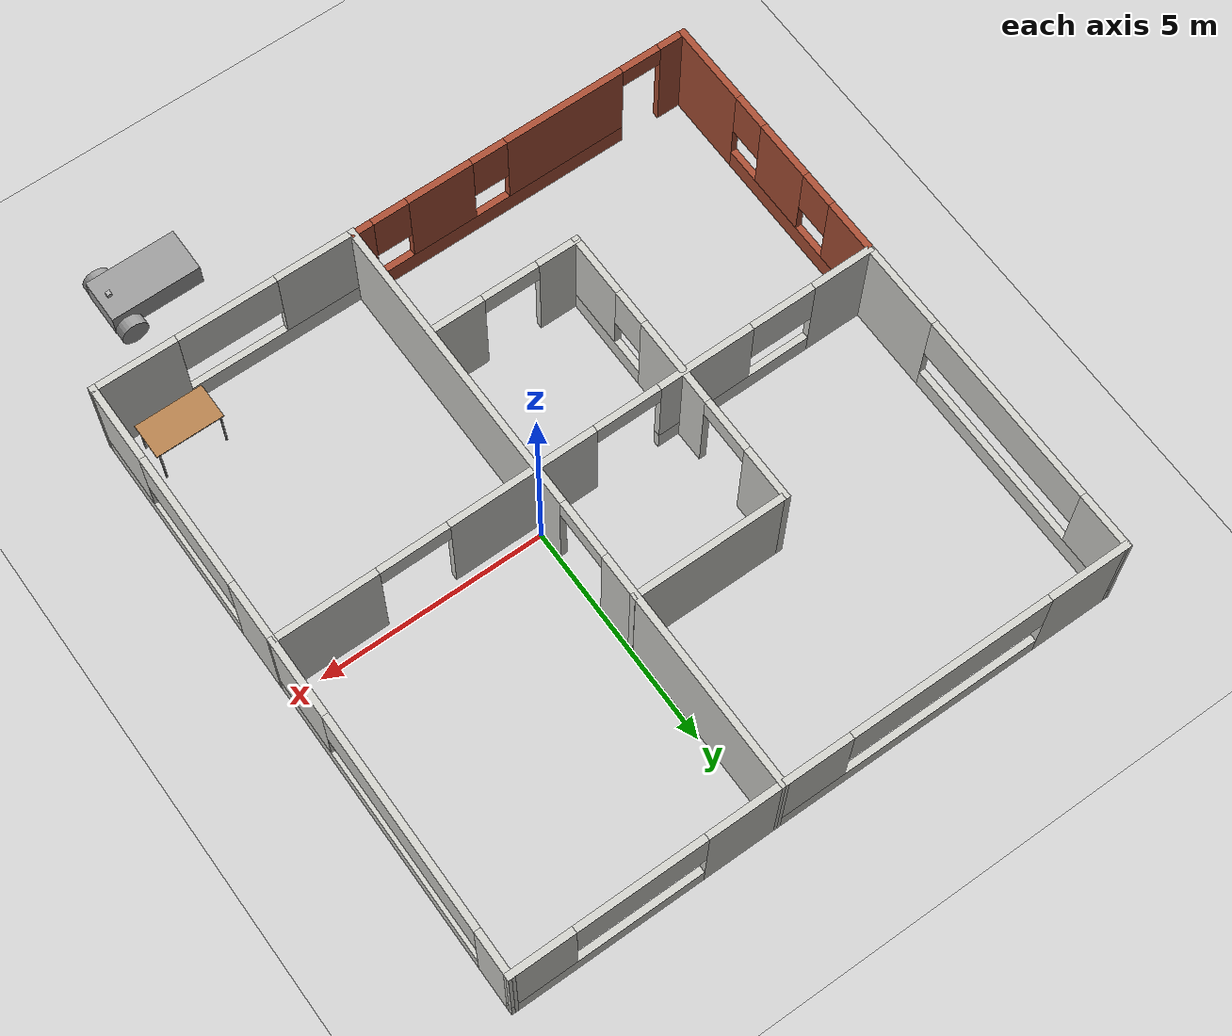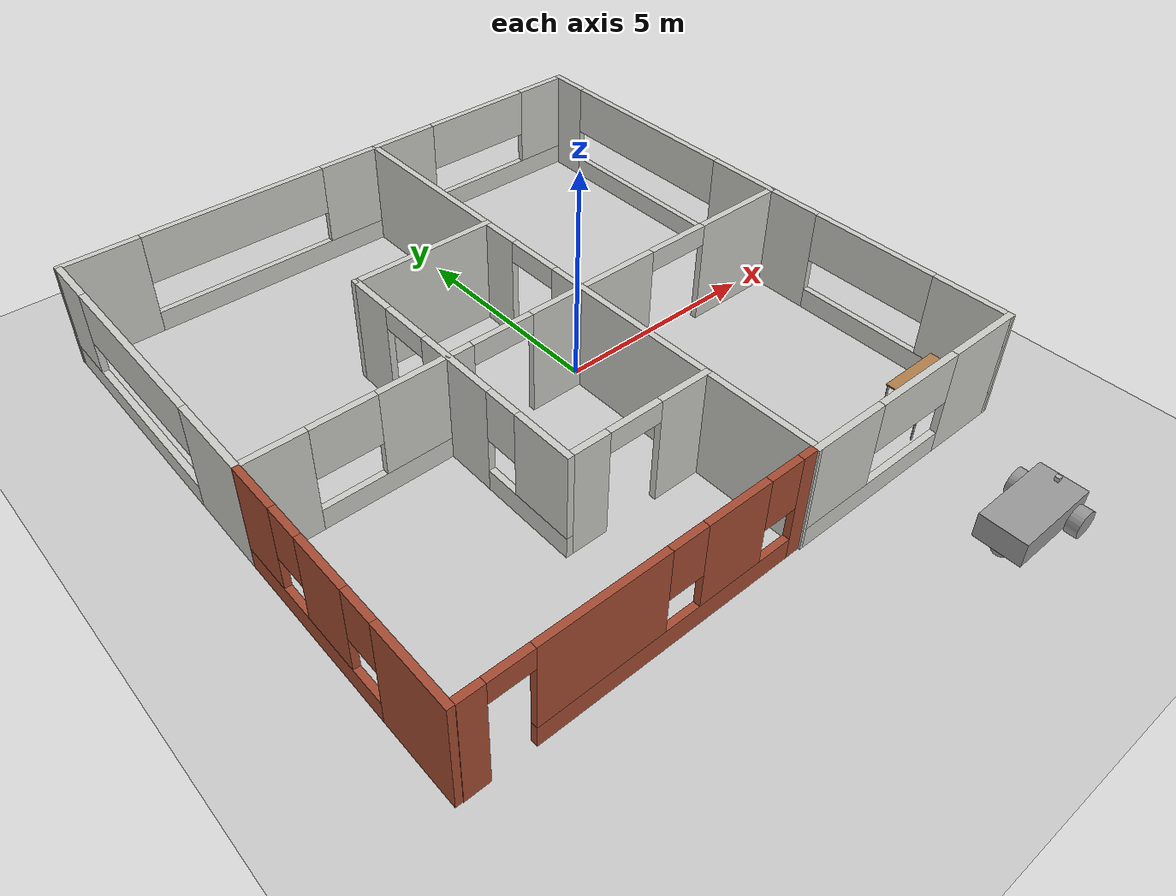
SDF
<sdf version="1.7">
 <world name="default">
  <model name="ground_plane">
   <static>1</static>
   <link name="link">
    <collision name="collision">
     <geometry><plane><normal>0 0 1</normal><size>100 100</size></plane></geometry>
     <surface>
      <contact><collide_bitmask>65535</collide_bitmask></contact>
      <friction><ode><mu>100</mu><mu2>50</mu2></ode></friction>
     </surface>
    </collision>
    <visual name="visual">
     <cast_shadows>0</cast_shadows>
     <geometry><plane><normal>0 0 1</normal><size>100 100</size></plane></geometry>
     <material>
      <script><uri>file://media/materials/scripts/gazebo.material</uri><name>Gazebo/Grey</name></script>
     </material>
    </visual>
   </link>
  </model>
  <model name="floor">
   <pose>-1.1194 0.40926 0 0 -0 0</pose>
   <link name="Wall_0">
    <collision name="Wall_0_Collision">
     <geometry><box><size>3.5 0.15 2.5</size></box></geometry>
     <pose>0 0 1.25 0 -0 0</pose>
    </collision>
    <visual name="Wall_0_Visual">
     <pose>0 0 1.25 0 -0 0</pose>
     <geometry><box><size>3.5 0.15 2.5</size></box></geometry>
     <material>
      <script><uri>file://media/materials/scripts/gazebo.material</uri><name>Gazebo/CeilingTiled</name></script>
      <ambient>0.921569 0.807843 0.615686 1</ambient>
     </material>
     <meta><layer>0</layer></meta>
    </visual>
    <pose>-0.680453 2.40138 0 0 -0 0</pose>
   </link>
   <link name="Wall_10">
    <pose>3.86966 6.71461 0 0 -0 0</pose>
    <visual name="Wall_10_Visual_0">
     <pose>-2.10615 0 1.25 0 -0 0</pose>
     <geometry><box><size>1.71925 0.15 2.5</size></box></geometry>
     <material>
      <script><uri>file://media/materials/scripts/gazebo.material</uri><name>Gazebo/CeilingTiled</name></script>
      <ambient>0.996078 0.47451 0.0196078 1</ambient>
     </material>
     <meta><layer>0</layer></meta>
    </visual>
    <collision name="Wall_10_Collision_0">
     <geometry><box><size>1.71925 0.15 2.5</size></box></geometry>
     <pose>-2.10615 0 1.25 0 -0 0</pose>
    </collision>
    <visual name="Wall_10_Visual_1">
     <pose>0.859627 0 0.25 0 -0 0</pose>
     <geometry><box><size>4.2123 0.15 0.5</size></box></geometry>
     <material>
      <script><uri>file://media/materials/scripts/gazebo.material</uri><name>Gazebo/CeilingTiled</name></script>
      <ambient>0.996078 0.47451 0.0196078 1</ambient>
     </material>
     <meta><layer>0</layer></meta>
    </visual>
    <collision name="Wall_10_Collision_1">
     <geometry><box><size>4.2123 0.15 0.5</size></box></geometry>
     <pose>0.859627 0 0.25 0 -0 0</pose>
    </collision>
    <visual name="Wall_10_Visual_2">
     <pose>2.25525 0 1.5 0 -0 0</pose>
     <geometry><box><size>1.42105 0.15 2</size></box></geometry>
     <material>
      <script><uri>file://media/materials/scripts/gazebo.material</uri><name>Gazebo/CeilingTiled</name></script>
      <ambient>0.996078 0.47451 0.0196078 1</ambient>
     </material>
     <meta><layer>0</layer></meta>
    </visual>
    <collision name="Wall_10_Collision_2">
     <geometry><box><size>1.42105 0.15 2</size></box></geometry>
     <pose>2.25525 0 1.5 0 -0 0</pose>
    </collision>
    <visual name="Wall_10_Visual_3">
     <pose>0.1491 0 1.9 0 -0 0</pose>
     <geometry><box><size>2.79124 0.15 1.2</size></box></geometry>
     <material>
      <script><uri>file://media/materials/scripts/gazebo.material</uri><name>Gazebo/CeilingTiled</name></script>
      <ambient>0.996078 0.47451 0.0196078 1</ambient>
     </material>
     <meta><layer>0</layer></meta>
    </visual>
    <collision name="Wall_10_Collision_3">
     <geometry><box><size>2.79124 0.15 1.2</size></box></geometry>
     <pose>0.1491 0 1.9 0 -0 0</pose>
    </collision>
   </link>
   <link name="Wall_11">
    <pose>6.74514 3.02848 0 0 0 -1.57495</pose>
    <visual name="Wall_11_Visual_0">
     <pose>-3.24419 0 1.25 0 -0 0</pose>
     <geometry><box><size>1.03393 0.15 2.5</size></box></geometry>
     <material>
      <script><uri>file://media/materials/scripts/gazebo.material</uri><name>Gazebo/CeilingTiled</name></script>
      <ambient>0.996078 0.47451 0.0196078 1</ambient>
     </material>
     <meta><layer>0</layer></meta>
    </visual>
    <collision name="Wall_11_Collision_0">
     <geometry><box><size>1.03393 0.15 2.5</size></box></geometry>
     <pose>-3.24419 0 1.25 0 -0 0</pose>
    </collision>
    <visual name="Wall_11_Visual_1">
     <pose>0.516965 0 0.25 0 -0 0</pose>
     <geometry><box><size>6.48838 0.15 0.5</size></box></geometry>
     <material>
      <script><uri>file://media/materials/scripts/gazebo.material</uri><name>Gazebo/CeilingTiled</name></script>
      <ambient>0.996078 0.47451 0.0196078 1</ambient>
     </material>
     <meta><layer>0</layer></meta>
    </visual>
    <collision name="Wall_11_Collision_1">
     <geometry><box><size>6.48838 0.15 0.5</size></box></geometry>
     <pose>0.516965 0 0.25 0 -0 0</pose>
    </collision>
    <visual name="Wall_11_Visual_2">
     <pose>2.86792 0 1.5 0 -0 0</pose>
     <geometry><box><size>1.78646 0.15 2</size></box></geometry>
     <material>
      <script><uri>file://media/materials/scripts/gazebo.material</uri><name>Gazebo/CeilingTiled</name></script>
      <ambient>0.996078 0.47451 0.0196078 1</ambient>
     </material>
     <meta><layer>0</layer></meta>
    </visual>
    <collision name="Wall_11_Collision_2">
     <geometry><box><size>1.78646 0.15 2</size></box></geometry>
     <pose>2.86792 0 1.5 0 -0 0</pose>
    </collision>
    <visual name="Wall_11_Visual_3">
     <pose>-0.376266 0 1.9 0 -0 0</pose>
     <geometry><box><size>4.70192 0.15 1.2</size></box></geometry>
     <material>
      <script><uri>file://media/materials/scripts/gazebo.material</uri><name>Gazebo/CeilingTiled</name></script>
      <ambient>0.996078 0.47451 0.0196078 1</ambient>
     </material>
     <meta><layer>0</layer></meta>
    </visual>
    <collision name="Wall_11_Collision_3">
     <geometry><box><size>4.70192 0.15 1.2</size></box></geometry>
     <pose>-0.376266 0 1.9 0 -0 0</pose>
    </collision>
   </link>
   <link name="Wall_13">
    <pose>-6.76045 3.04378 0 0 -0 1.5708</pose>
    <visual name="Wall_13_Visual_0">
     <pose>-2.80286 0 1.25 0 -0 0</pose>
     <geometry><box><size>1.94712 0.15 2.5</size></box></geometry>
     <material>
      <script><uri>file://media/materials/scripts/gazebo.material</uri><name>Gazebo/CeilingTiled</name></script>
      <ambient>0.996078 0.47451 0.0196078 1</ambient>
     </material>
     <meta><layer>0</layer></meta>
    </visual>
    <collision name="Wall_13_Collision_0">
     <geometry><box><size>1.94712 0.15 2.5</size></box></geometry>
     <pose>-2.80286 0 1.25 0 -0 0</pose>
    </collision>
    <visual name="Wall_13_Visual_1">
     <pose>0.97356 0 0.25 0 -0 0</pose>
     <geometry><box><size>5.60571 0.15 0.5</size></box></geometry>
     <material>
      <script><uri>file://media/materials/scripts/gazebo.material</uri><name>Gazebo/CeilingTiled</name></script>
      <ambient>0.996078 0.47451 0.0196078 1</ambient>
     </material>
     <meta><layer>0</layer></meta>
    </visual>
    <collision name="Wall_13_Collision_1">
     <geometry><box><size>5.60571 0.15 0.5</size></box></geometry>
     <pose>0.97356 0 0.25 0 -0 0</pose>
    </collision>
    <visual name="Wall_13_Visual_2">
     <pose>3.1335 0 1.5 0 -0 0</pose>
     <geometry><box><size>1.28584 0.15 2</size></box></geometry>
     <material>
      <script><uri>file://media/materials/scripts/gazebo.material</uri><name>Gazebo/CeilingTiled</name></script>
      <ambient>0.996078 0.47451 0.0196078 1</ambient>
     </material>
     <meta><layer>0</layer></meta>
    </visual>
    <collision name="Wall_13_Collision_2">
     <geometry><box><size>1.28584 0.15 2</size></box></geometry>
     <pose>3.1335 0 1.5 0 -0 0</pose>
    </collision>
    <visual name="Wall_13_Visual_3">
     <pose>0.330641 0 1.9 0 -0 0</pose>
     <geometry><box><size>4.31987 0.15 1.2</size></box></geometry>
     <material>
      <script><uri>file://media/materials/scripts/gazebo.material</uri><name>Gazebo/CeilingTiled</name></script>
      <ambient>0.996078 0.47451 0.0196078 1</ambient>
     </material>
     <meta><layer>0</layer></meta>
    </visual>
    <collision name="Wall_13_Collision_3">
     <geometry><box><size>4.31987 0.15 1.2</size></box></geometry>
     <pose>0.330641 0 1.9 0 -0 0</pose>
    </collision>
   </link>
   <link name="Wall_14">
    <pose>-2.93667 6.7299 0 0 0 -0.004</pose>
    <visual name="Wall_14_Visual_0">
     <pose>-2.97598 0 1.25 0 -0 0</pose>
     <geometry><box><size>1.84566 0.15 2.5</size></box></geometry>
     <material>
      <script><uri>file://media/materials/scripts/gazebo.material</uri><name>Gazebo/CeilingTiled</name></script>
      <ambient>0.996078 0.47451 0.0196078 1</ambient>
     </material>
     <meta><layer>0</layer></meta>
    </visual>
    <collision name="Wall_14_Collision_0">
     <geometry><box><size>1.84566 0.15 2.5</size></box></geometry>
     <pose>-2.97598 0 1.25 0 -0 0</pose>
    </collision>
    <visual name="Wall_14_Visual_1">
     <pose>0.922833 0 0.25 0 -0 0</pose>
     <geometry><box><size>5.95195 0.15 0.5</size></box></geometry>
     <material>
      <script><uri>file://media/materials/scripts/gazebo.material</uri><name>Gazebo/CeilingTiled</name></script>
      <ambient>0.996078 0.47451 0.0196078 1</ambient>
     </material>
     <meta><layer>0</layer></meta>
    </visual>
    <collision name="Wall_14_Collision_1">
     <geometry><box><size>5.95195 0.15 0.5</size></box></geometry>
     <pose>0.922833 0 0.25 0 -0 0</pose>
    </collision>
    <visual name="Wall_14_Visual_2">
     <pose>3.15291 0 1.5 0 -0 0</pose>
     <geometry><box><size>1.49179 0.15 2</size></box></geometry>
     <material>
      <script><uri>file://media/materials/scripts/gazebo.material</uri><name>Gazebo/CeilingTiled</name></script>
      <ambient>0.996078 0.47451 0.0196078 1</ambient>
     </material>
     <meta><layer>0</layer></meta>
    </visual>
    <collision name="Wall_14_Collision_2">
     <geometry><box><size>1.49179 0.15 2</size></box></geometry>
     <pose>3.15291 0 1.5 0 -0 0</pose>
    </collision>
    <visual name="Wall_14_Visual_3">
     <pose>0.176935 0 1.9 0 -0 0</pose>
     <geometry><box><size>4.46016 0.15 1.2</size></box></geometry>
     <material>
      <script><uri>file://media/materials/scripts/gazebo.material</uri><name>Gazebo/CeilingTiled</name></script>
      <ambient>0.996078 0.47451 0.0196078 1</ambient>
     </material>
     <meta><layer>0</layer></meta>
    </visual>
    <collision name="Wall_14_Collision_3">
     <geometry><box><size>4.46016 0.15 1.2</size></box></geometry>
     <pose>0.176935 0 1.9 0 -0 0</pose>
    </collision>
   </link>
   <link name="Wall_16">
    <pose>-2.35545 -0.856476 0 0 0 -1.5708</pose>
    <visual name="Wall_16_Visual_0">
     <pose>-2.72153 0 1.25 0 -0 0</pose>
     <geometry><box><size>1.22295 0.15 2.5</size></box></geometry>
     <material>
      <script><uri>file://media/materials/scripts/gazebo.material</uri><name>Gazebo/CeilingTiled</name></script>
      <ambient>0.996078 0.47451 0.0196078 1</ambient>
     </material>
     <meta><layer>0</layer></meta>
    </visual>
    <collision name="Wall_16_Collision_0">
     <geometry><box><size>1.22295 0.15 2.5</size></box></geometry>
     <pose>-2.72153 0 1.25 0 -0 0</pose>
    </collision>
    <visual name="Wall_16_Visual_1">
     <pose>0.091031 0 1.25 0 -0 0</pose>
     <geometry><box><size>2.00077 0.15 2.5</size></box></geometry>
     <material>
      <script><uri>file://media/materials/scripts/gazebo.material</uri><name>Gazebo/CeilingTiled</name></script>
      <ambient>0.996078 0.47451 0.0196078 1</ambient>
     </material>
     <meta><layer>0</layer></meta>
    </visual>
    <collision name="Wall_16_Collision_1">
     <geometry><box><size>2.00077 0.15 2.5</size></box></geometry>
     <pose>0.091031 0 1.25 0 -0 0</pose>
    </collision>
    <visual name="Wall_16_Visual_2">
     <pose>2.21221 0 0.25 0 -0 0</pose>
     <geometry><box><size>2.24159 0.15 0.5</size></box></geometry>
     <material>
      <script><uri>file://media/materials/scripts/gazebo.material</uri><name>Gazebo/CeilingTiled</name></script>
      <ambient>0.996078 0.47451 0.0196078 1</ambient>
     </material>
     <meta><layer>0</layer></meta>
    </visual>
    <collision name="Wall_16_Collision_2">
     <geometry><box><size>2.24159 0.15 0.5</size></box></geometry>
     <pose>2.21221 0 0.25 0 -0 0</pose>
    </collision>
    <visual name="Wall_16_Visual_3">
     <pose>2.61221 0 1.5 0 -0 0</pose>
     <geometry><box><size>1.44159 0.15 2</size></box></geometry>
     <material>
      <script><uri>file://media/materials/scripts/gazebo.material</uri><name>Gazebo/CeilingTiled</name></script>
      <ambient>0.996078 0.47451 0.0196078 1</ambient>
     </material>
     <meta><layer>0</layer></meta>
    </visual>
    <collision name="Wall_16_Collision_3">
     <geometry><box><size>1.44159 0.15 2</size></box></geometry>
     <pose>2.61221 0 1.5 0 -0 0</pose>
    </collision>
    <visual name="Wall_16_Visual_4">
     <pose>1.49142 0 1.9 0 -0 0</pose>
     <geometry><box><size>0.8 0.15 1.2</size></box></geometry>
     <material>
      <script><uri>file://media/materials/scripts/gazebo.material</uri><name>Gazebo/CeilingTiled</name></script>
      <ambient>0.996078 0.47451 0.0196078 1</ambient>
     </material>
     <meta><layer>0</layer></meta>
    </visual>
    <collision name="Wall_16_Collision_4">
     <geometry><box><size>0.8 0.15 1.2</size></box></geometry>
     <pose>1.49142 0 1.9 0 -0 0</pose>
    </collision>
    <visual name="Wall_16_Visual_5">
     <pose>-1.5097 0 2.25 0 -0 0</pose>
     <geometry><box><size>1.2007 0.15 0.5</size></box></geometry>
     <material>
      <script><uri>file://media/materials/scripts/gazebo.material</uri><name>Gazebo/CeilingTiled</name></script>
      <ambient>0.996078 0.47451 0.0196078 1</ambient>
     </material>
     <meta><layer>0</layer></meta>
    </visual>
    <collision name="Wall_16_Collision_5">
     <geometry><box><size>1.2007 0.15 0.5</size></box></geometry>
     <pose>-1.5097 0 2.25 0 -0 0</pose>
    </collision>
   </link>
   <link name="Wall_19">
    <pose>-0.680453 -4.11433 0 0 -0 0</pose>
    <visual name="Wall_19_Visual_0">
     <pose>-1.25768 0 1.25 0 -0 0</pose>
     <geometry><box><size>0.984642 0.15 2.5</size></box></geometry>
     <material>
      <script><uri>file://media/materials/scripts/gazebo.material</uri><name>Gazebo/CeilingTiled</name></script>
      <ambient>0.921569 0.807843 0.615686 1</ambient>
     </material>
     <meta><layer>0</layer></meta>
    </visual>
    <collision name="Wall_19_Collision_0">
     <geometry><box><size>0.984642 0.15 2.5</size></box></geometry>
     <pose>-1.25768 0 1.25 0 -0 0</pose>
    </collision>
    <visual name="Wall_19_Visual_1">
     <pose>1.1158 0 1.25 0 -0 0</pose>
     <geometry><box><size>1.2684 0.15 2.5</size></box></geometry>
     <material>
      <script><uri>file://media/materials/scripts/gazebo.material</uri><name>Gazebo/CeilingTiled</name></script>
      <ambient>0.921569 0.807843 0.615686 1</ambient>
     </material>
     <meta><layer>0</layer></meta>
    </visual>
    <collision name="Wall_19_Collision_1">
     <geometry><box><size>1.2684 0.15 2.5</size></box></geometry>
     <pose>1.1158 0 1.25 0 -0 0</pose>
    </collision>
    <visual name="Wall_19_Visual_2">
     <pose>-0.141879 0 2.25 0 -0 0</pose>
     <geometry><box><size>1.24696 0.15 0.5</size></box></geometry>
     <material>
      <script><uri>file://media/materials/scripts/gazebo.material</uri><name>Gazebo/CeilingTiled</name></script>
      <ambient>0.921569 0.807843 0.615686 1</ambient>
     </material>
     <meta><layer>0</layer></meta>
    </visual>
    <collision name="Wall_19_Collision_2">
     <geometry><box><size>1.24696 0.15 0.5</size></box></geometry>
     <pose>-0.141879 0 2.25 0 -0 0</pose>
    </collision>
   </link>
   <link name="Wall_6">
    <pose>-5e-06 -0.68823 0 0 -0 0.004545</pose>
    <visual name="Wall_6_Visual_0">
     <pose>-6.09809 0 1.25 0 -0 0</pose>
     <geometry><box><size>1.41365 0.15 2.5</size></box></geometry>
     <material>
      <script><uri>file://media/materials/scripts/gazebo.material</uri><name>Gazebo/CeilingTiled</name></script>
      <ambient>0.921569 0.807843 0.615686 1</ambient>
     </material>
     <meta><layer>0</layer></meta>
    </visual>
    <collision name="Wall_6_Collision_0">
     <geometry><box><size>1.41365 0.15 2.5</size></box></geometry>
     <pose>-6.09809 0 1.25 0 -0 0</pose>
    </collision>
    <visual name="Wall_6_Visual_1">
     <pose>1.30078 0 1.25 0 -0 0</pose>
     <geometry><box><size>3.27649 0.15 2.5</size></box></geometry>
     <material>
      <script><uri>file://media/materials/scripts/gazebo.material</uri><name>Gazebo/CeilingTiled</name></script>
      <ambient>0.921569 0.807843 0.615686 1</ambient>
     </material>
     <meta><layer>0</layer></meta>
    </visual>
    <collision name="Wall_6_Collision_1">
     <geometry><box><size>3.27649 0.15 2.5</size></box></geometry>
     <pose>1.30078 0 1.25 0 -0 0</pose>
    </collision>
    <visual name="Wall_6_Visual_2">
     <pose>5.64099 0 1.25 0 -0 0</pose>
     <geometry><box><size>2.32786 0.15 2.5</size></box></geometry>
     <material>
      <script><uri>file://media/materials/scripts/gazebo.material</uri><name>Gazebo/CeilingTiled</name></script>
      <ambient>0.921569 0.807843 0.615686 1</ambient>
     </material>
     <meta><layer>0</layer></meta>
    </visual>
    <collision name="Wall_6_Collision_2">
     <geometry><box><size>2.32786 0.15 2.5</size></box></geometry>
     <pose>5.64099 0 1.25 0 -0 0</pose>
    </collision>
    <visual name="Wall_6_Visual_3">
     <pose>-3.59193 0 0.25 0 -0 0</pose>
     <geometry><box><size>3.59867 0.15 0.5</size></box></geometry>
     <material>
      <script><uri>file://media/materials/scripts/gazebo.material</uri><name>Gazebo/CeilingTiled</name></script>
      <ambient>0.921569 0.807843 0.615686 1</ambient>
     </material>
     <meta><layer>0</layer></meta>
    </visual>
    <collision name="Wall_6_Collision_3">
     <geometry><box><size>3.59867 0.15 0.5</size></box></geometry>
     <pose>-3.59193 0 0.25 0 -0 0</pose>
    </collision>
    <visual name="Wall_6_Visual_4">
     <pose>-2.86816 0 1.5 0 -0 0</pose>
     <geometry><box><size>2.15113 0.15 2</size></box></geometry>
     <material>
      <script><uri>file://media/materials/scripts/gazebo.material</uri><name>Gazebo/CeilingTiled</name></script>
      <ambient>0.921569 0.807843 0.615686 1</ambient>
     </material>
     <meta><layer>0</layer></meta>
    </visual>
    <collision name="Wall_6_Collision_4">
     <geometry><box><size>2.15113 0.15 2</size></box></geometry>
     <pose>-2.86816 0 1.5 0 -0 0</pose>
    </collision>
    <visual name="Wall_6_Visual_5">
     <pose>-4.6675 0 1.9 0 -0 0</pose>
     <geometry><box><size>1.44755 0.15 1.2</size></box></geometry>
     <material>
      <script><uri>file://media/materials/scripts/gazebo.material</uri><name>Gazebo/CeilingTiled</name></script>
      <ambient>0.921569 0.807843 0.615686 1</ambient>
     </material>
     <meta><layer>0</layer></meta>
    </visual>
    <collision name="Wall_6_Collision_5">
     <geometry><box><size>1.44755 0.15 1.2</size></box></geometry>
     <pose>-4.6675 0 1.9 0 -0 0</pose>
    </collision>
    <visual name="Wall_6_Visual_6">
     <pose>3.70804 0 2.25 0 -0 0</pose>
     <geometry><box><size>1.53804 0.15 0.5</size></box></geometry>
     <material>
      <script><uri>file://media/materials/scripts/gazebo.material</uri><name>Gazebo/CeilingTiled</name></script>
      <ambient>0.921569 0.807843 0.615686 1</ambient>
     </material>
     <meta><layer>0</layer></meta>
    </visual>
    <collision name="Wall_6_Collision_6">
     <geometry><box><size>1.53804 0.15 0.5</size></box></geometry>
     <pose>3.70804 0 2.25 0 -0 0</pose>
    </collision>
    <visual name="Wall_6_Visual_7">
     <pose>-1.06503 0 2.25 0 -0 0</pose>
     <geometry><box><size>1.45513 0.15 0.5</size></box></geometry>
     <material>
      <script><uri>file://media/materials/scripts/gazebo.material</uri><name>Gazebo/CeilingTiled</name></script>
      <ambient>0.921569 0.807843 0.615686 1</ambient>
     </material>
     <meta><layer>0</layer></meta>
    </visual>
    <collision name="Wall_6_Collision_7">
     <geometry><box><size>1.45513 0.15 0.5</size></box></geometry>
     <pose>-1.06503 0 2.25 0 -0 0</pose>
    </collision>
   </link>
   <link name="Wall_7">
    <pose>6.72985 -3.70137 0 0 0 -1.5708</pose>
    <visual name="Wall_7_Visual_0">
     <pose>-2.40595 0 1.25 0 -0 0</pose>
     <geometry><box><size>1.42563 0.15 2.5</size></box></geometry>
     <material>
      <script><uri>file://media/materials/scripts/gazebo.material</uri><name>Gazebo/CeilingTiled</name></script>
      <ambient>0.996078 0.47451 0.0196078 1</ambient>
     </material>
     <meta><layer>0</layer></meta>
    </visual>
    <collision name="Wall_7_Collision_0">
     <geometry><box><size>1.42563 0.15 2.5</size></box></geometry>
     <pose>-2.40595 0 1.25 0 -0 0</pose>
    </collision>
    <visual name="Wall_7_Visual_1">
     <pose>0.712816 0 0.25 0 -0 0</pose>
     <geometry><box><size>4.8119 0.15 0.5</size></box></geometry>
     <material>
      <script><uri>file://media/materials/scripts/gazebo.material</uri><name>Gazebo/CeilingTiled</name></script>
      <ambient>0.996078 0.47451 0.0196078 1</ambient>
     </material>
     <meta><layer>0</layer></meta>
    </visual>
    <collision name="Wall_7_Collision_1">
     <geometry><box><size>4.8119 0.15 0.5</size></box></geometry>
     <pose>0.712816 0 0.25 0 -0 0</pose>
    </collision>
    <visual name="Wall_7_Visual_2">
     <pose>2.21906 0 1.5 0 -0 0</pose>
     <geometry><box><size>1.79941 0.15 2</size></box></geometry>
     <material>
      <script><uri>file://media/materials/scripts/gazebo.material</uri><name>Gazebo/CeilingTiled</name></script>
      <ambient>0.996078 0.47451 0.0196078 1</ambient>
     </material>
     <meta><layer>0</layer></meta>
    </visual>
    <collision name="Wall_7_Collision_2">
     <geometry><box><size>1.79941 0.15 2</size></box></geometry>
     <pose>2.21906 0 1.5 0 -0 0</pose>
    </collision>
    <visual name="Wall_7_Visual_3">
     <pose>-0.186888 0 1.9 0 -0 0</pose>
     <geometry><box><size>3.01249 0.15 1.2</size></box></geometry>
     <material>
      <script><uri>file://media/materials/scripts/gazebo.material</uri><name>Gazebo/CeilingTiled</name></script>
      <ambient>0.996078 0.47451 0.0196078 1</ambient>
     </material>
     <meta><layer>0</layer></meta>
    </visual>
    <collision name="Wall_7_Collision_3">
     <geometry><box><size>3.01249 0.15 1.2</size></box></geometry>
     <pose>-0.186888 0 1.9 0 -0 0</pose>
    </collision>
   </link>
   <link name="Wall_8">
    <pose>3.86966 -6.7298 0 0 -0 3.13625</pose>
    <visual name="Wall_8_Visual_0">
     <pose>-1.99488 0 1.25 0 -0 0</pose>
     <geometry><box><size>1.8807 0.15 2.5</size></box></geometry>
     <material>
      <script><uri>file://media/materials/scripts/gazebo.material</uri><name>Gazebo/CeilingTiled</name></script>
      <ambient>0.996078 0.47451 0.0196078 1</ambient>
     </material>
     <meta><layer>0</layer></meta>
    </visual>
    <collision name="Wall_8_Collision_0">
     <geometry><box><size>1.8807 0.15 2.5</size></box></geometry>
     <pose>-1.99488 0 1.25 0 -0 0</pose>
    </collision>
    <visual name="Wall_8_Visual_1">
     <pose>0.940351 0 0.25 0 -0 0</pose>
     <geometry><box><size>3.98975 0.15 0.5</size></box></geometry>
     <material>
      <script><uri>file://media/materials/scripts/gazebo.material</uri><name>Gazebo/CeilingTiled</name></script>
      <ambient>0.996078 0.47451 0.0196078 1</ambient>
     </material>
     <meta><layer>0</layer></meta>
    </visual>
    <collision name="Wall_8_Collision_1">
     <geometry><box><size>3.98975 0.15 0.5</size></box></geometry>
     <pose>0.940351 0 0.25 0 -0 0</pose>
    </collision>
    <visual name="Wall_8_Visual_2">
     <pose>2.03431 0 1.5 0 -0 0</pose>
     <geometry><box><size>1.80183 0.15 2</size></box></geometry>
     <material>
      <script><uri>file://media/materials/scripts/gazebo.material</uri><name>Gazebo/CeilingTiled</name></script>
      <ambient>0.996078 0.47451 0.0196078 1</ambient>
     </material>
     <meta><layer>0</layer></meta>
    </visual>
    <collision name="Wall_8_Collision_2">
     <geometry><box><size>1.80183 0.15 2</size></box></geometry>
     <pose>2.03431 0 1.5 0 -0 0</pose>
    </collision>
    <visual name="Wall_8_Visual_3">
     <pose>0.039436 0 1.9 0 -0 0</pose>
     <geometry><box><size>2.18792 0.15 1.2</size></box></geometry>
     <material>
      <script><uri>file://media/materials/scripts/gazebo.material</uri><name>Gazebo/CeilingTiled</name></script>
      <ambient>0.996078 0.47451 0.0196078 1</ambient>
     </material>
     <meta><layer>0</layer></meta>
    </visual>
    <collision name="Wall_8_Collision_3">
     <geometry><box><size>2.18792 0.15 1.2</size></box></geometry>
     <pose>0.039436 0 1.9 0 -0 0</pose>
    </collision>
   </link>
   <link name="Wall_9">
    <pose>0.994177 5e-05 0 0 -0 1.57307</pose>
    <visual name="Wall_9_Visual_0">
     <pose>-3.31645 0 1.25 0 -0 0</pose>
     <geometry><box><size>6.94625 0.15 2.5</size></box></geometry>
     <material>
      <script><uri>file://media/materials/scripts/gazebo.material</uri><name>Gazebo/CeilingTiled</name></script>
      <ambient>0.921569 0.807843 0.615686 1</ambient>
     </material>
     <meta><layer>0</layer></meta>
    </visual>
    <collision name="Wall_9_Collision_0">
     <geometry><box><size>6.94625 0.15 2.5</size></box></geometry>
     <pose>-3.31645 0 1.25 0 -0 0</pose>
    </collision>
    <visual name="Wall_9_Visual_1">
     <pose>4.11974 0 1.25 0 -0 0</pose>
     <geometry><box><size>5.33967 0.15 2.5</size></box></geometry>
     <material>
      <script><uri>file://media/materials/scripts/gazebo.material</uri><name>Gazebo/CeilingTiled</name></script>
      <ambient>0.921569 0.807843 0.615686 1</ambient>
     </material>
     <meta><layer>0</layer></meta>
    </visual>
    <collision name="Wall_9_Collision_1">
     <geometry><box><size>5.33967 0.15 2.5</size></box></geometry>
     <pose>4.11974 0 1.25 0 -0 0</pose>
    </collision>
    <visual name="Wall_9_Visual_2">
     <pose>0.803289 0 2.25 0 -0 0</pose>
     <geometry><box><size>1.29322 0.15 0.5</size></box></geometry>
     <material>
      <script><uri>file://media/materials/scripts/gazebo.material</uri><name>Gazebo/CeilingTiled</name></script>
      <ambient>0.921569 0.807843 0.615686 1</ambient>
     </material>
     <meta><layer>0</layer></meta>
    </visual>
    <collision name="Wall_9_Collision_2">
     <geometry><box><size>1.29322 0.15 0.5</size></box></geometry>
     <pose>0.803289 0 2.25 0 -0 0</pose>
    </collision>
   </link>
   <static>1</static>
  </model>
  <model name="table_clone_0">
   <static>1</static>
   <link name="link">
    <collision name="surface">
     <pose>0 0 1 0 -0 0</pose>
     <geometry><box><size>1.5 0.8 0.03</size></box></geometry>
     <surface><friction><ode><mu>0.6</mu><mu2>0.6</mu2></ode></friction></surface>
    </collision>
    <visual name="visual1">
     <pose>0 0 1 0 -0 0</pose>
     <geometry><box><size>1.5 0.8 0.03</size></box></geometry>
     <material>
      <script><uri>file://media/materials/scripts/gazebo.material</uri><name>Gazebo/Wood</name></script>
     </material>
    </visual>
    <collision name="front_left_leg">
     <pose>0.68 0.38 0.5 0 -0 0</pose>
     <geometry><cylinder><radius>0.02</radius><length>1</length></cylinder></geometry>
    </collision>
    <visual name="front_left_leg">
     <pose>0.68 0.38 0.5 0 -0 0</pose>
     <geometry><cylinder><radius>0.02</radius><length>1</length></cylinder></geometry>
     <material>
      <script><uri>file://media/materials/scripts/gazebo.material</uri><name>Gazebo/Grey</name></script>
     </material>
    </visual>
    <collision name="front_right_leg">
     <pose>0.68 -0.38 0.5 0 -0 0</pose>
     <geometry><cylinder><radius>0.02</radius><length>1</length></cylinder></geometry>
    </collision>
    <visual name="front_right_leg">
     <pose>0.68 -0.38 0.5 0 -0 0</pose>
     <geometry><cylinder><radius>0.02</radius><length>1</length></cylinder></geometry>
     <material>
      <script><uri>file://media/materials/scripts/gazebo.material</uri><name>Gazebo/Grey</name></script>
     </material>
    </visual>
    <collision name="back_right_leg">
     <pose>-0.68 -0.38 0.5 0 -0 0</pose>
     <geometry><cylinder><radius>0.02</radius><length>1</length></cylinder></geometry>
    </collision>
    <visual name="back_right_leg">
     <pose>-0.68 -0.38 0.5 0 -0 0</pose>
     <geometry><cylinder><radius>0.02</radius><length>1</length></cylinder></geometry>
     <material>
      <script><uri>file://media/materials/scripts/gazebo.material</uri><name>Gazebo/Grey</name></script>
     </material>
    </visual>
    <collision name="back_left_leg">
     <pose>-0.68 0.38 0.5 0 -0 0</pose>
     <geometry><cylinder><radius>0.02</radius><length>1</length></cylinder></geometry>
    </collision>
    <visual name="back_left_leg">
     <pose>-0.68 0.38 0.5 0 -0 0</pose>
     <geometry><cylinder><radius>0.02</radius><length>1</length></cylinder></geometry>
     <material>
      <script><uri>file://media/materials/scripts/gazebo.material</uri><name>Gazebo/Grey</name></script>
     </material>
    </visual>
   </link>
   <pose>4.45347 -5.56698 0 0 -0 0</pose>
  </model>
  <model name="follower_vehicle">
   <pose>3.47693 -8.76936 0.325 0 -0 0</pose>
   <link name="chassis">
    <pose>-0.151427 -0 0.175 0 -0 0</pose>
    <inertial>
     <mass>1.14395</mass>
     <inertia>
      <ixx>0.126164</ixx>
      <ixy>0</ixy>
      <ixz>0</ixz>
      <iyy>0.416519</iyy>
      <iyz>0</iyz>
      <izz>0.481014</izz>
     </inertia>
    </inertial>
    <visual name="visual">
     <geometry><box><size>2.01142 1 0.568726</size></box></geometry>
     <material>
      <script><uri>file://media/materials/scripts/gazebo.material</uri><name>Gazebo/Grey</name></script>
     </material>
    </visual>
    <collision name="collision">
     <geometry><box><size>2.01142 1 0.568726</size></box></geometry>
     <surface>
      <friction><ode><mu>1</mu><mu2>1</mu2><fdir1>0 0 0</fdir1><slip1>0</slip1><slip2>0</slip2></ode></friction>
      <bounce><restitution_coefficient>0</restitution_coefficient><threshold>1e+06</threshold></bounce>
      <contact>
       <collide_without_contact>0</collide_without_contact>
       <collide_without_contact_bitmask>1</collide_without_contact_bitmask>
       <collide_bitmask>1</collide_bitmask>
       <ode>
        <soft_cfm>0</soft_cfm>
        <soft_erp>0.2</soft_erp>
        <kp>1e+13</kp>
        <kd>1</kd>
        <max_vel>0.01</max_vel>
        <min_depth>0</min_depth>
       </ode>
      </contact>
     </surface>
    </collision>
   </link>
   <link name="wheel_1">
    <pose>0.554283 0.625029 -0.025 1.5707 -0 0</pose>
    <inertial>
     <mass>2</mass>
     <inertia><ixx>0.145833</ixx><ixy>0</ixy><ixz>0</ixz><iyy>0.145833</iyy><iyz>0</iyz><izz>0.125</izz></inertia>
    </inertial>
    <visual name="visual">
     <geometry><cylinder><radius>0.3</radius><length>0.25</length></cylinder></geometry>
     <material>
      <script><uri>file://media/materials/scripts/gazebo.material</uri><name>Gazebo/Grey</name></script>
     </material>
    </visual>
    <collision name="collision">
     <geometry><cylinder><radius>0.3</radius><length>0.25</length></cylinder></geometry>
     <surface>
      <friction><ode><mu>1</mu><mu2>1</mu2><fdir1>0 0 0</fdir1><slip1>0</slip1><slip2>0</slip2></ode></friction>
      <bounce><restitution_coefficient>0</restitution_coefficient><threshold>1e+06</threshold></bounce>
      <contact>
       <collide_without_contact>0</collide_without_contact>
       <collide_without_contact_bitmask>1</collide_without_contact_bitmask>
       <collide_bitmask>1</collide_bitmask>
       <ode>
        <soft_cfm>0</soft_cfm>
        <soft_erp>0.2</soft_erp>
        <kp>1e+13</kp>
        <kd>1</kd>
        <max_vel>0.01</max_vel>
        <min_depth>0</min_depth>
       </ode>
      </contact>
     </surface>
    </collision>
   </link>
   <link name="wheel_2">
    <pose>0.554282 -0.625029 -0.025 1.5707 -0 0</pose>
    <inertial>
     <mass>2</mass>
     <inertia><ixx>0.145833</ixx><ixy>0</ixy><ixz>0</ixz><iyy>0.145833</iyy><iyz>0</iyz><izz>0.125</izz></inertia>
    </inertial>
    <visual name="visual">
     <geometry><cylinder><radius>0.3</radius><length>0.25</length></cylinder></geometry>
     <material>
      <script><uri>file://media/materials/scripts/gazebo.material</uri><name>Gazebo/Grey</name></script>
     </material>
    </visual>
    <collision name="collision">
     <geometry><cylinder><radius>0.3</radius><length>0.25</length></cylinder></geometry>
     <surface>
      <friction><ode><mu>1</mu><mu2>1</mu2><fdir1>0 0 0</fdir1><slip1>0</slip1><slip2>0</slip2></ode></friction>
      <bounce><restitution_coefficient>0</restitution_coefficient><threshold>1e+06</threshold></bounce>
      <contact>
       <collide_without_contact>0</collide_without_contact>
       <collide_without_contact_bitmask>1</collide_without_contact_bitmask>
       <collide_bitmask>1</collide_bitmask>
       <ode>
        <soft_cfm>0</soft_cfm>
        <soft_erp>0.2</soft_erp>
        <kp>1e+13</kp>
        <kd>1</kd>
        <max_vel>0.01</max_vel>
        <min_depth>0</min_depth>
       </ode>
      </contact>
     </surface>
    </collision>
   </link>
   <link name="caster">
    <pose>-0.957138 -0 -0.125 0 -0 0</pose>
    <inertial>
     <mass>1</mass>
     <inertia><ixx>0.1</ixx><ixy>0</ixy><ixz>0</ixz><iyy>0.1</iyy><iyz>0</iyz><izz>0.1</izz></inertia>
    </inertial>
    <visual name="visual">
     <geometry><sphere><radius>0.2</radius></sphere></geometry>
     <material>
      <script><uri>file://media/materials/scripts/gazebo.material</uri><name>Gazebo/Grey</name></script>
     </material>
    </visual>
    <collision name="collision">
     <geometry><sphere><radius>0.2</radius></sphere></geometry>
     <surface>
      <friction><ode><mu>1</mu><mu2>1</mu2><fdir1>0 0 0</fdir1><slip1>0</slip1><slip2>0</slip2></ode></friction>
      <bounce><restitution_coefficient>0</restitution_coefficient><threshold>1e+06</threshold></bounce>
      <contact>
       <collide_without_contact>0</collide_without_contact>
       <collide_without_contact_bitmask>1</collide_without_contact_bitmask>
       <collide_bitmask>1</collide_bitmask>
       <ode>
        <soft_cfm>0</soft_cfm>
        <soft_erp>0.2</soft_erp>
        <kp>1e+13</kp>
        <kd>1</kd>
        <max_vel>0.01</max_vel>
        <min_depth>0</min_depth>
       </ode>
      </contact>
     </surface>
    </collision>
   </link>
   <model name="depth_camera">
    <link name="link">
     <pose>0.05 0.05 0.05 0 -0 0</pose>
     <inertial>
      <mass>0.1</mass>
      <inertia>
       <ixx>0.000166667</ixx>
       <iyy>0.000166667</iyy>
       <izz>0.000166667</izz>
       <ixy>0</ixy>
       <ixz>0</ixz>
       <iyz>0</iyz>
      </inertia>
     </inertial>
     <collision name="collision"><geometry><box><size>0.1 0.1 0.1</size></box></geometry></collision>
     <visual name="visual"><geometry><box><size>0.1 0.1 0.1</size></box></geometry></visual>
     <sensor name="camera" type="depth">
      <camera name="depth">
       <horizontal_fov>1.047</horizontal_fov>
       <image><width>320</width><height>240</height></image>
       <clip><near>0.1</near><far>100</far></clip>
      </camera>
      <always_on>1</always_on>
      <update_rate>30</update_rate>
      <visualize>1</visualize>
     </sensor>
    </link>
    <pose>0.569632 -0.03223 0.502056 0 -0 0</pose>
   </model>
   <joint name="chassis_wheel_1_revolute" type="revolute">
    <parent>chassis</parent>
    <child>wheel_1</child>
    <axis>
     <xyz>0 0 1</xyz>
     <limit>
      <lower>-1.79769e+308</lower>
      <upper>1.79769e+308</upper>
      <effort>-1</effort>
      <velocity>-1</velocity>
     </limit>
     <dynamics>
      <spring_reference>0</spring_reference>
      <spring_stiffness>0</spring_stiffness>
      <damping>0</damping>
      <friction>0</friction>
     </dynamics>
    </axis>
    <physics>
     <ode><limit><cfm>0</cfm><erp>0.2</erp></limit><suspension><cfm>0</cfm><erp>0.2</erp></suspension></ode>
    </physics>
   </joint>
   <joint name="chassis_wheel_2_revolute" type="revolute">
    <parent>chassis</parent>
    <child>wheel_2</child>
    <axis>
     <xyz>0 0 1</xyz>
     <limit>
      <lower>-1.79769e+308</lower>
      <upper>1.79769e+308</upper>
      <effort>-1</effort>
      <velocity>-1</velocity>
     </limit>
     <dynamics>
      <spring_reference>0</spring_reference>
      <spring_stiffness>0</spring_stiffness>
      <damping>0</damping>
      <friction>0</friction>
     </dynamics>
    </axis>
    <physics>
     <ode><limit><cfm>0</cfm><erp>0.2</erp></limit><suspension><cfm>0</cfm><erp>0.2</erp></suspension></ode>
    </physics>
   </joint>
   <joint name="chassis_caster_ball" type="ball">
    <parent>chassis</parent>
    <child>caster</child>
    <physics>
     <ode><limit><cfm>0</cfm><erp>0.2</erp></limit><suspension><cfm>0</cfm><erp>0.2</erp></suspension></ode>
    </physics>
   </joint>
   <joint name="chassis_depth_camera_link_fixed" type="fixed">
    <parent>chassis</parent>
    <child>depth_camera::link</child>
    <physics>
     <ode><limit><cfm>0</cfm><erp>0.2</erp></limit><suspension><cfm>0</cfm><erp>0.2</erp></suspension></ode>
    </physics>
   </joint>
   <static>0</static>
   <plugin name="follower" filename="libFollowerPlugin.so"/>
  </model>
  <model name="extentionfloor">
   <pose>-3.97784 -3.17124 0 0 -0 0</pose>
   <link name="Wall_2">
    <pose>-3.90284 -0.159732 0 0 -0 1.5708</pose>
    <visual name="Wall_2_Visual_0">
     <pose>-2.05658 0 1.25 0 -0 0</pose>
     <geometry><box><size>1.88685 0.15 2.5</size></box></geometry>
     <material>
      <script><uri>file://media/materials/scripts/gazebo.material</uri><name>Gazebo/Bricks</name></script>
      <ambient>1 1 1 1</ambient>
     </material>
     <meta><layer>0</layer></meta>
    </visual>
    <collision name="Wall_2_Collision_0">
     <geometry><box><size>1.88685 0.15 2.5</size></box></geometry>
     <pose>-2.05658 0 1.25 0 -0 0</pose>
    </collision>
    <visual name="Wall_2_Visual_1">
     <pose>0.943425 0 0.25 0 -0 0</pose>
     <geometry><box><size>4.11315 0.15 0.5</size></box></geometry>
     <material>
      <script><uri>file://media/materials/scripts/gazebo.material</uri><name>Gazebo/Bricks</name></script>
      <ambient>1 1 1 1</ambient>
     </material>
     <meta><layer>0</layer></meta>
    </visual>
    <collision name="Wall_2_Collision_1">
     <geometry><box><size>4.11315 0.15 0.5</size></box></geometry>
     <pose>0.943425 0 0.25 0 -0 0</pose>
    </collision>
    <visual name="Wall_2_Visual_2">
     <pose>0.355581 0 1.5 0 -0 0</pose>
     <geometry><box><size>1.33746 0.15 2</size></box></geometry>
     <material>
      <script><uri>file://media/materials/scripts/gazebo.material</uri><name>Gazebo/Bricks</name></script>
      <ambient>1 1 1 1</ambient>
     </material>
     <meta><layer>0</layer></meta>
    </visual>
    <collision name="Wall_2_Collision_2">
     <geometry><box><size>1.33746 0.15 2</size></box></geometry>
     <pose>0.355581 0 1.5 0 -0 0</pose>
    </collision>
    <visual name="Wall_2_Visual_3">
     <pose>2.41216 0 1.5 0 -0 0</pose>
     <geometry><box><size>1.17569 0.15 2</size></box></geometry>
     <material>
      <script><uri>file://media/materials/scripts/gazebo.material</uri><name>Gazebo/Bricks</name></script>
      <ambient>1 1 1 1</ambient>
     </material>
     <meta><layer>0</layer></meta>
    </visual>
    <collision name="Wall_2_Collision_3">
     <geometry><box><size>1.17569 0.15 2</size></box></geometry>
     <pose>2.41216 0 1.5 0 -0 0</pose>
    </collision>
    <visual name="Wall_2_Visual_4">
     <pose>-0.71315 0 1.9 0 -0 0</pose>
     <geometry><box><size>0.8 0.15 1.2</size></box></geometry>
     <material>
      <script><uri>file://media/materials/scripts/gazebo.material</uri><name>Gazebo/Bricks</name></script>
      <ambient>1 1 1 1</ambient>
     </material>
     <meta><layer>0</layer></meta>
    </visual>
    <collision name="Wall_2_Collision_4">
     <geometry><box><size>0.8 0.15 1.2</size></box></geometry>
     <pose>-0.71315 0 1.9 0 -0 0</pose>
    </collision>
    <visual name="Wall_2_Visual_5">
     <pose>1.42431 0 1.9 0 -0 0</pose>
     <geometry><box><size>0.8 0.15 1.2</size></box></geometry>
     <material>
      <script><uri>file://media/materials/scripts/gazebo.material</uri><name>Gazebo/Bricks</name></script>
      <ambient>1 1 1 1</ambient>
     </material>
     <meta><layer>0</layer></meta>
    </visual>
    <collision name="Wall_2_Collision_5">
     <geometry><box><size>0.8 0.15 1.2</size></box></geometry>
     <pose>1.42431 0 1.9 0 -0 0</pose>
    </collision>
   </link>
   <link name="Wall_4">
    <pose>0.045679 -3.09624 0 0 -0 3.14159</pose>
    <visual name="Wall_4_Visual_0">
     <pose>-3.63975 0 1.25 0 -0 0</pose>
     <geometry><box><size>0.470501 0.15 2.5</size></box></geometry>
     <material>
      <script><uri>file://media/materials/scripts/gazebo.material</uri><name>Gazebo/Bricks</name></script>
      <ambient>1 1 1 1</ambient>
     </material>
     <meta><layer>0</layer></meta>
    </visual>
    <collision name="Wall_4_Collision_0">
     <geometry><box><size>0.470501 0.15 2.5</size></box></geometry>
     <pose>-3.63975 0 1.25 0 -0 0</pose>
    </collision>
    <visual name="Wall_4_Visual_1">
     <pose>3.61 0 1.25 0 -0 0</pose>
     <geometry><box><size>0.529999 0.15 2.5</size></box></geometry>
     <material>
      <script><uri>file://media/materials/scripts/gazebo.material</uri><name>Gazebo/Bricks</name></script>
      <ambient>1 1 1 1</ambient>
     </material>
     <meta><layer>0</layer></meta>
    </visual>
    <collision name="Wall_4_Collision_1">
     <geometry><box><size>0.529999 0.15 2.5</size></box></geometry>
     <pose>3.61 0 1.25 0 -0 0</pose>
    </collision>
    <visual name="Wall_4_Visual_2">
     <pose>-0.479749 0 0.25 0 -0 0</pose>
     <geometry><box><size>5.8495 0.15 0.5</size></box></geometry>
     <material>
      <script><uri>file://media/materials/scripts/gazebo.material</uri><name>Gazebo/Bricks</name></script>
      <ambient>1 1 1 1</ambient>
     </material>
     <meta><layer>0</layer></meta>
    </visual>
    <collision name="Wall_4_Collision_2">
     <geometry><box><size>5.8495 0.15 0.5</size></box></geometry>
     <pose>-0.479749 0 0.25 0 -0 0</pose>
    </collision>
    <visual name="Wall_4_Visual_3">
     <pose>-1.86025 0 1.5 0 -0 0</pose>
     <geometry><box><size>1.4885 0.15 2</size></box></geometry>
     <material>
      <script><uri>file://media/materials/scripts/gazebo.material</uri><name>Gazebo/Bricks</name></script>
      <ambient>1 1 1 1</ambient>
     </material>
     <meta><layer>0</layer></meta>
    </visual>
    <collision name="Wall_4_Collision_3">
     <geometry><box><size>1.4885 0.15 2</size></box></geometry>
     <pose>-1.86025 0 1.5 0 -0 0</pose>
    </collision>
    <visual name="Wall_4_Visual_4">
     <pose>1.0645 0 1.5 0 -0 0</pose>
     <geometry><box><size>2.761 0.15 2</size></box></geometry>
     <material>
      <script><uri>file://media/materials/scripts/gazebo.material</uri><name>Gazebo/Bricks</name></script>
      <ambient>1 1 1 1</ambient>
     </material>
     <meta><layer>0</layer></meta>
    </visual>
    <collision name="Wall_4_Collision_4">
     <geometry><box><size>2.761 0.15 2</size></box></geometry>
     <pose>1.0645 0 1.5 0 -0 0</pose>
    </collision>
    <visual name="Wall_4_Visual_5">
     <pose>-3.0045 0 1.9 0 -0 0</pose>
     <geometry><box><size>0.8 0.15 1.2</size></box></geometry>
     <material>
      <script><uri>file://media/materials/scripts/gazebo.material</uri><name>Gazebo/Bricks</name></script>
      <ambient>1 1 1 1</ambient>
     </material>
     <meta><layer>0</layer></meta>
    </visual>
    <collision name="Wall_4_Collision_5">
     <geometry><box><size>0.8 0.15 1.2</size></box></geometry>
     <pose>-3.0045 0 1.9 0 -0 0</pose>
    </collision>
    <visual name="Wall_4_Visual_6">
     <pose>-0.715999 0 1.9 0 -0 0</pose>
     <geometry><box><size>0.8 0.15 1.2</size></box></geometry>
     <material>
      <script><uri>file://media/materials/scripts/gazebo.material</uri><name>Gazebo/Bricks</name></script>
      <ambient>1 1 1 1</ambient>
     </material>
     <meta><layer>0</layer></meta>
    </visual>
    <collision name="Wall_4_Collision_6">
     <geometry><box><size>0.8 0.15 1.2</size></box></geometry>
     <pose>-0.715999 0 1.9 0 -0 0</pose>
    </collision>
    <visual name="Wall_4_Visual_7">
     <pose>2.895 0 2.25 0 -0 0</pose>
     <geometry><box><size>0.9 0.15 0.5</size></box></geometry>
     <material>
      <script><uri>file://media/materials/scripts/gazebo.material</uri><name>Gazebo/Bricks</name></script>
      <ambient>1 1 1 1</ambient>
     </material>
     <meta><layer>0</layer></meta>
    </visual>
    <collision name="Wall_4_Collision_7">
     <geometry><box><size>0.9 0.15 0.5</size></box></geometry>
     <pose>2.895 0 2.25 0 -0 0</pose>
    </collision>
   </link>
   <static>1</static>
  </model>
 </world>
</sdf>
